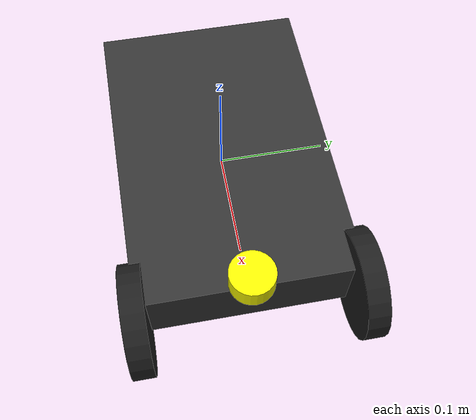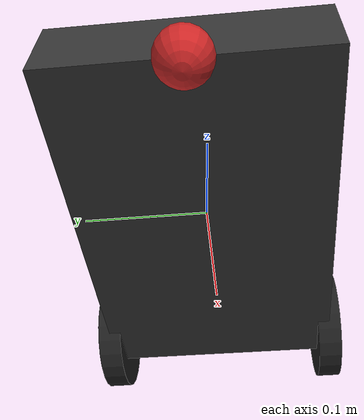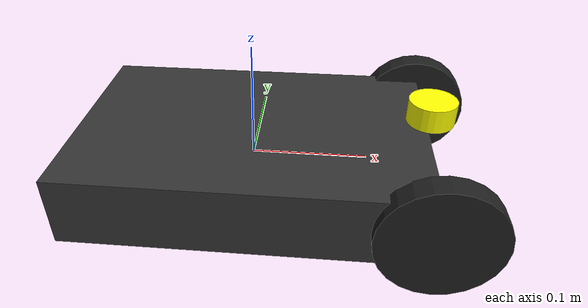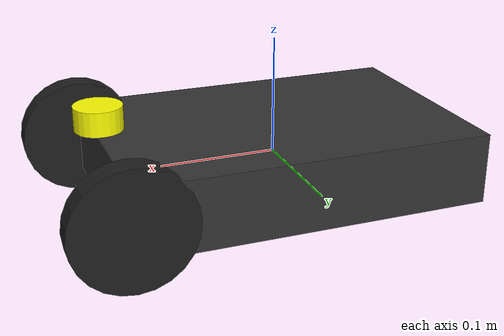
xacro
<?xml version="1.0" ?>

<robot name="talos" xmlns:xacro="http://www.ros.org/wiki/xacro">
  <material name="grey">
    <color rgba="0.2 0.2 0.2 1.0"/>
  </material>

  <material name="yellow">
    <color rgba="1 1 0 1.0"/>
  </material>

  <gazebo reference="link_chassis">
    <material>Gazebo/DarkGrey</material>
  </gazebo>
  <gazebo reference="link_leftwheel">
    <material>Gazebo/Black</material>
  </gazebo>
  <gazebo reference="link_rightwheel">
    <material>Gazebo/Black</material>
  </gazebo>
  <gazebo reference="link_lasersensor">
    <material>Gazebo/Yellow</material>
  </gazebo>

  <gazebo>
    <plugin filename="libgazebo_ros_diff_drive.so" name="differential_drive_controller">
      <legacyMode>false</legacyMode>
      <alwaysOn>true</alwaysOn>
      <updateRate>20</updateRate>
      <leftJoint>joint_leftwheel</leftJoint>
      <rightJoint>joint_rightwheel</rightJoint>
      <wheelSeparation>0.2</wheelSeparation>
      <wheelDiameter>0.1</wheelDiameter>
      <torque>0.01</torque>
      <commandTopic>cmd_vel</commandTopic>
      <odometryTopic>odom</odometryTopic>
      <odometryFrame>odom</odometryFrame>
      <robotBaseFrame>link_chassis</robotBaseFrame>
    </plugin>
  </gazebo>

<gazebo reference="link_lasersensor">
    <sensor type="ray" name="head_hokuyo_sensor">
      <pose>0 0 0 0 0 0</pose>
      <visualize>false</visualize>
      <update_rate>20</update_rate>
      <ray>
        <scan>
          <horizontal>
            <samples>720</samples>
            <resolution>1</resolution>
            <min_angle>-1.570796</min_angle>
            <max_angle>1.570796</max_angle>
          </horizontal>
        </scan>
        <range>
          <min>0.10</min>
          <max>10.0</max>
          <resolution>0.01</resolution>
        </range>
        <noise>
          <type>gaussian</type>
          <mean>0.0</mean>
          <stddev>0.01</stddev>
        </noise>
      </ray>
      <plugin name="gazebo_ros_head_hokuyo_controller" filename="libgazebo_ros_laser.so">
        <topicName>/talos/laser/scan</topicName>
        <frameName>link_lasersensor</frameName>
      </plugin>
    </sensor>
  </gazebo>

  <link name="link_chassis">
    <!-- pose -->
    <!--  x y   z roll pitch yaw-->
    <pose>0 0 0.1    0     0   0</pose>
    <!-- inertial -->
    <inertial>
      <!--   3 Kgr -->
      <mass value="3"/>
      <!-- same origin as the pose-->
      <origin rpy="0 0 0" xyz="0 0 0.1"/>
      <!-- ixx= mass*(length*length+height*height)/12
             iyy= mass*(width*width+height*height)/12
             izz= mass*(width*width+length*length)/12 -->
      <inertia ixx="0.0109" ixy="0" ixz="0"
               iyy="0.0234" iyz="0"
               izz="0.0325"/>
    </inertial>
    <!-- body -->
    <collision name="collision_chassis">
      <geometry>
        <box size="0.30 0.20 0.06"/>
      </geometry>
    </collision>
    <visual>
      <origin rpy="0 0 0" xyz="0 0 0"/>
      <geometry>
        <box size="0.30 0.20 0.06"/>
      </geometry>
      <material name="grey"/>
    </visual>
    <!-- thirdwheel -->
            <!-- no friction -->

  </link>
     <!-- Caster Wheel -->
  <joint name="fixed" type="fixed">
    <parent link="link_chassis"/>
    <child link="caster_wheel"/>
  </joint>

  <link name="caster_wheel">

    <collision>
      <origin rpy=" 0 0 0" xyz="-0.15 0 -0.03"/>
      <geometry>
    <sphere radius="0.02"/>
      </geometry>
    </collision>

    <visual>
      <origin rpy=" 0 0 0" xyz="-0.15 0 -0.03"/>
      <geometry>
    <sphere radius="0.02"/>
      </geometry>
      <material name="red"/>
    </visual>

    <inertia>
      <origin xyz="-0.15 0 0.1" rpy="0 0 0"/>
      <mass value="0.5"/>
      <sphere_inertia m="0.5" r="0.02"/>
    </inertia>
  </link>

<link name="link_lasersensor">
    <inertial>
        <origin xyz="0 0 0" rpy="0 0 0" />
        <mass value="1" />
        <!-- ixx= mass*(3*radius*radius+length*length)/12
             iyy= mass*(3*radius*radius+length*length)/12
             izz= mass*(radius*radius)/2 -->
        <inertia  ixx="0.00013333333" ixy = "0" ixz = "0"
            iyy="0.00013333333" iyz = "0"
            izz="0.000125" />
    </inertial>

    <visual>
        <origin xyz="0 0 0" rpy="0 0 0" />
        <geometry>
        <cylinder radius="0.02" length="0.02"/>
        </geometry>
        <material name="yellow" />
    </visual>

    <collision>
        <origin xyz="0 0 0" rpy="0 0 0"/>
        <geometry>
        <cylinder radius="0.02" length="0.02"/>
        </geometry>
    </collision>
    </link>

    <joint name="joint_lasersensor" type="fixed">
    <origin xyz="0.15 0 0.05" rpy="0 0 0"/>
    <parent link="link_chassis"/>
    <child link="link_lasersensor"/>
  </joint>

  <link name="link_rightwheel">
    <inertial>
      <mass value="0.1"/>
      <origin rpy="0 1.5707 1.5707" xyz="0 0 0"/>
      <inertia ixx="0.00006583333" ixy="0" ixz="0"
               iyy="0.00006583333" iyz="0"
               izz="0.000125"/>
    </inertial>
    <collision name="link_rightwheel_collision">
      <origin rpy="0 1.5707 1.5707" xyz="0 0 0"/>
      <geometry>
        <cylinder length="0.02" radius="0.05"/>
      </geometry>
    </collision>
    <visual name="link_rightwheel_visual">
      <origin rpy="0 1.5707 1.5707" xyz="0 0 0"/>
      <geometry>
        <cylinder length="0.02" radius="0.05"/>
      </geometry>
    </visual>
  </link>

  <joint name="joint_rightwheel" type="continuous">
    <origin rpy="0 0 0" xyz="0.15 0.10 0"/>
    <child link="link_rightwheel"/>
    <parent link="link_chassis"/>
    <axis rpy="0 0 0" xyz="0 1 0"/>
    <limit effort="10000" velocity="1000"/>
    <joint_properties damping="1.0" friction="1.0"/>
  </joint>

  <link name="link_leftwheel">
    <inertial>
      <mass value="0.2"/>
      <origin rpy="0 1.5707 1.5707" xyz="0 0 0"/>
      <inertia ixx="0.00006583333" ixy="0" ixz="0"
               iyy="0.00006583333" iyz="0"
               izz="0.001"/>
    </inertial>
    <collision name="link_leftwheel_collision">
      <origin rpy="0 1.5707 1.5707" xyz="0 0 0"/>
      <geometry>
        <cylinder length="0.02" radius="0.05"/>
      </geometry>
    </collision>
    <visual name="link_leftwheel_visual">
      <origin rpy="0 1.5707 1.5707" xyz="0 0 0"/>
      <geometry>
        <cylinder length="0.02" radius="0.05"/>
      </geometry>
    </visual>
  </link>

  <joint name="joint_leftwheel" type="continuous">
    <origin rpy="0 0 0" xyz="0.15 -0.10 0"/>
    <child link="link_leftwheel"/>
    <parent link="link_chassis"/>
    <axis rpy="0 0 0" xyz="0 1 0"/>
    <limit effort="10000" velocity="1000"/>
    <joint_properties damping="1.0" friction="1.0"/>
  </joint>
</robot>
